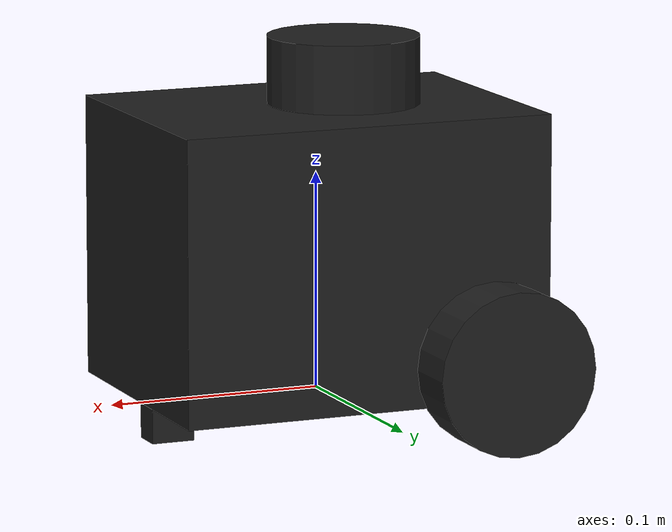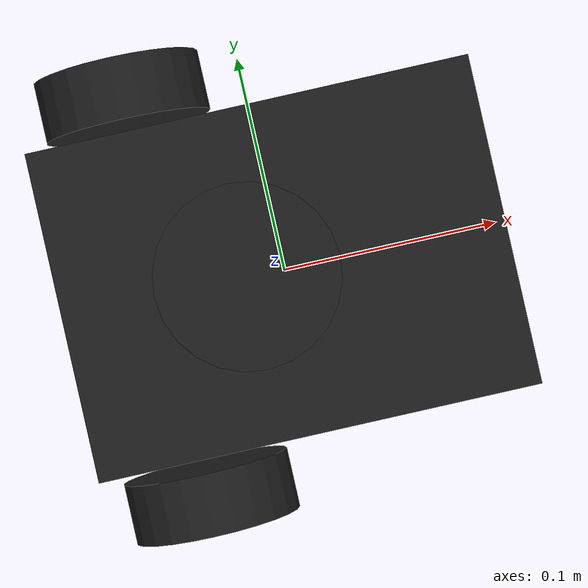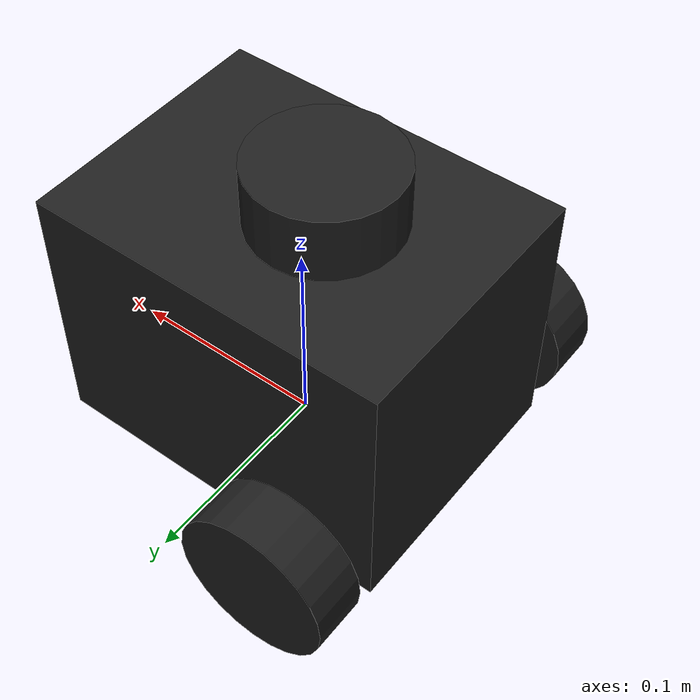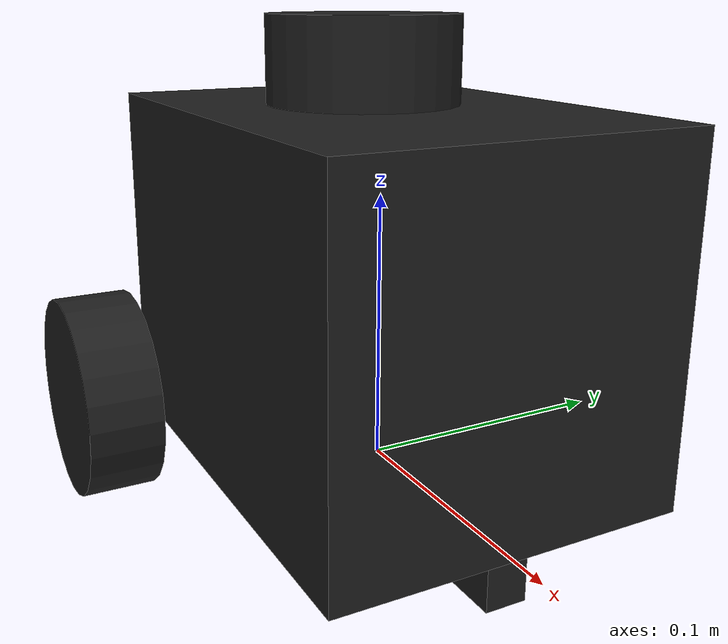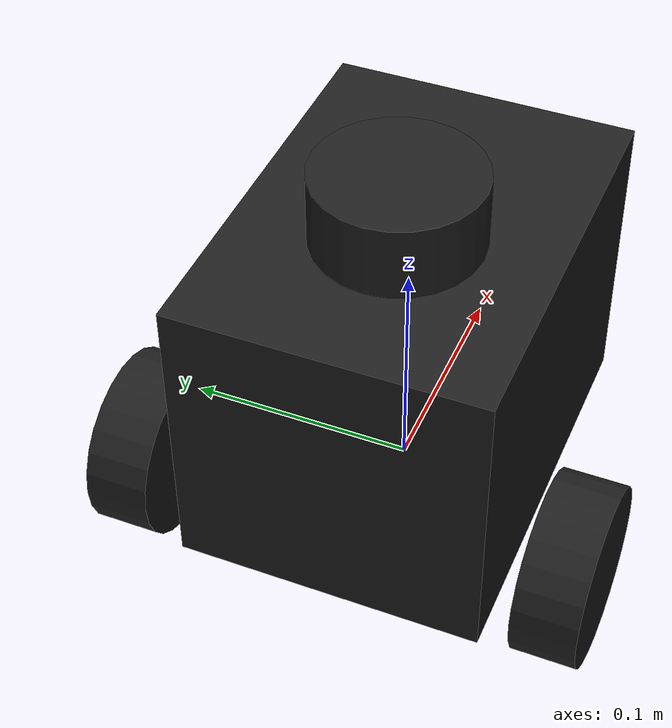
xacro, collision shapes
<?xml version="1.0" ?>
<robot name="turtlebot3_burger" xmlns:xacro="http://ros.org/wiki/xacro">
  <xacro:include filename="$(find neobot_description)/urdf/common_properties.xacro"/>
  <xacro:include filename="$(find neobot_description)/urdf/neobot_gazebo.xacro"/>

  <link name="base_footprint"/>

  <joint name="base_joint" type="fixed">
    <parent link="base_footprint"/>
    <child link="base_link"/>
    <origin xyz="0.0 0.0 0.00" rpy="0 0 0"/>
  </joint>

  <link name="base_link">
    <visual>
      <origin xyz="0 0 0" rpy="0 0 3.14"/>
      <geometry>
        <mesh filename="package://neobot_description/meshes/base.dae"/>
      </geometry>
      <material name="light_black"/>
    </visual>

    <collision>
      <origin xyz="0 0 0.066" rpy="1.57 0 0"/>
      <geometry>
        <box size="0.175 0.13 0.13"/>
      </geometry>
    </collision>

    <inertial>
      <origin xyz="0 0 0" rpy="0 0 0"/>
      <mass value="8.2573504e-01"/>
      <inertia ixx="2.2124416e-03" ixy="-1.2294101e-05" ixz="3.4938785e-05"
               iyy="2.1193702e-03" iyz="-5.0120904e-06"
               izz="2.0064271e-03" />
    </inertial>
  </link>

  <joint name="wheel_left_joint" type="continuous">
    <parent link="base_link"/>
    <child link="wheel_left_link"/>
    <origin xyz="-0.054 0.07769 0.022" rpy="0 0 0"/>
    <axis xyz="0 1 0"/>
  </joint>

  <link name="wheel_left_link">
    <visual>
      <origin xyz="0 0 0" rpy="0 0 3.14"/>
      <geometry>
        <mesh filename="package://neobot_description/meshes/wheel.dae"/>
      </geometry>
      <material name="dark"/>
    </visual>

    <collision>
      <origin xyz="0 0.0138 0" rpy="1.57 0 0"/>
      <geometry>
        <cylinder length="0.027" radius="0.0375"/>
      </geometry>
    </collision>

    <inertial>
      <origin xyz="0 0 0" />
      <mass value="2.8498940e-02" />
      <inertia ixx="1.1175580e-05" ixy="-4.2369783e-11" ixz="-5.9381719e-09"
               iyy="1.1192413e-05" iyz="-1.4400107e-11"
               izz="2.0712558e-05" />
      </inertial>
  </link>

  <joint name="wheel_right_joint" type="continuous">
    <parent link="base_link"/>
    <child link="wheel_right_link"/>
    <origin xyz="-0.054 -0.07769 0.022" rpy="0 0 0"/>
    <axis xyz="0 1 0"/>
  </joint>

  <link name="wheel_right_link">
    <visual>
      <origin xyz="0 0 0" rpy="0 0 0"/>
      <geometry>
        <mesh filename="package://neobot_description/meshes/wheel.dae"/>
      </geometry>
      <material name="dark"/>
    </visual>

    <collision>
      <origin xyz="0 -0.0138 0" rpy="1.57 0 0"/>
      <geometry>
        <cylinder length="0.027" radius="0.0375"/>
      </geometry>
    </collision>

    <inertial>
      <origin xyz="0 0 0" />
      <mass value="2.8498940e-02" />
      <inertia ixx="1.1175580e-05" ixy="-4.2369783e-11" ixz="-5.9381719e-09"
               iyy="1.1192413e-05" iyz="-1.4400107e-11"
               izz="2.0712558e-05" />
      </inertial>
  </link>

  <joint name="caster_back_joint" type="fixed">
    <parent link="base_link"/>
    <child link="caster_back_link"/>
    <origin xyz="0.073 0 -0.008" rpy="-1.57 0 0"/>
  </joint>

  <link name="caster_back_link">
    <collision>
      <origin xyz="0 0 0" rpy="0 0 0"/>
      <geometry>
        <box size="0.02 0.02 0.015"/>
      </geometry>
    </collision>

    <inertial>
      <origin xyz="0 0 0" />
      <mass value="0.005" />
      <inertia ixx="0.001" ixy="0.0" ixz="0.0"
               iyy="0.001" iyz="0.0"
               izz="0.001" />
    </inertial>
  </link>

  <joint name="imu_joint" type="fixed">
    <parent link="base_link"/>
    <child link="imu_link"/>
    <origin xyz="-0.032 0 0.068" rpy="0 0 0"/>
  </joint>

  <link name="imu_link"/>

  <joint name="scan_joint" type="fixed">
    <parent link="base_link"/>
    <child link="base_scan"/>
    <origin xyz="-0.0135 0 0.132" rpy="0 0 0"/>
  </joint>

  <link name="base_scan">
    <visual>
      <origin xyz="0 0 0" rpy="0 0 1.57"/>
      <geometry>
        <mesh filename="package://neobot_description/meshes/LDS-01.dae"/>
      </geometry>
      <material name="dark"/>
    </visual>

    <collision>
      <origin xyz="0 0 0.0142" rpy="0 0 0"/>
      <geometry>
        <cylinder length="0.032" radius="0.035"/>
      </geometry>
    </collision>

    <inertial>
      <mass value="0.114" />
      <origin xyz="0 0 0" />
      <inertia ixx="0.001" ixy="0.0" ixz="0.0"
               iyy="0.001" iyz="0.0"
               izz="0.001" />
    </inertial>
  </link>

</robot>
